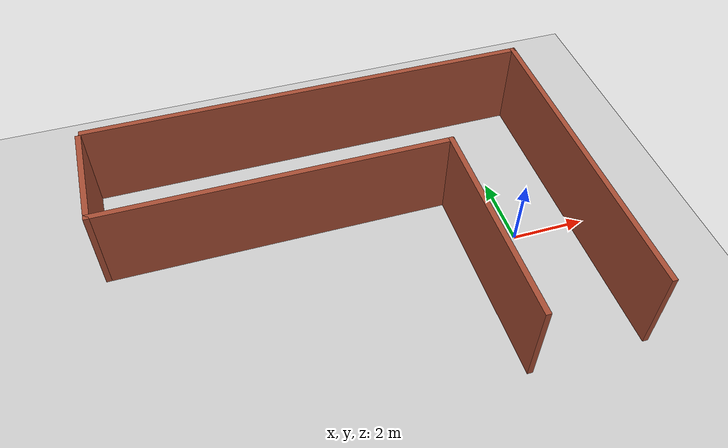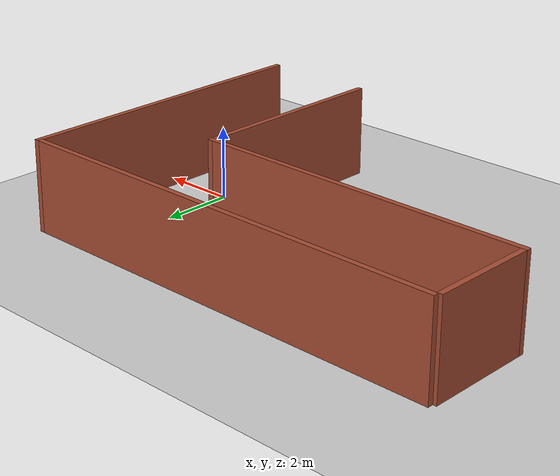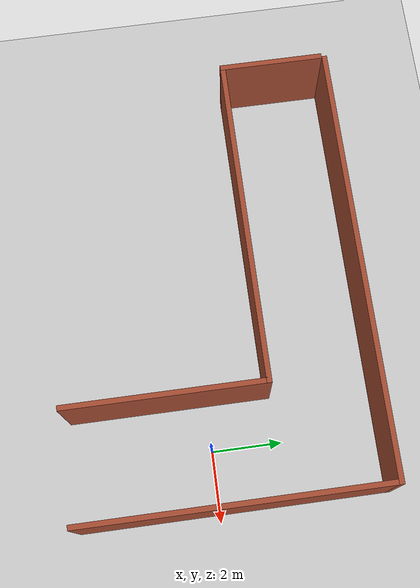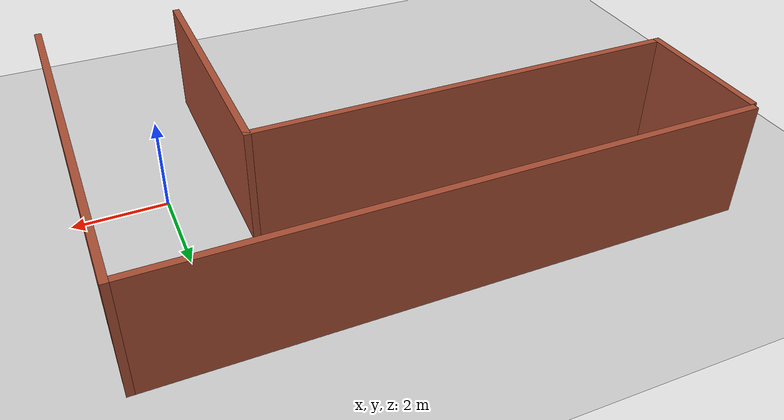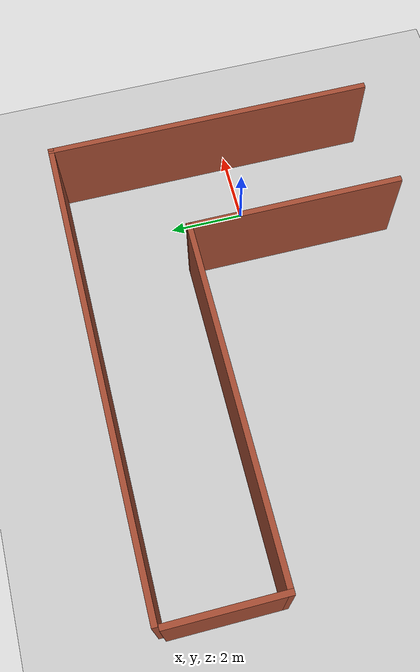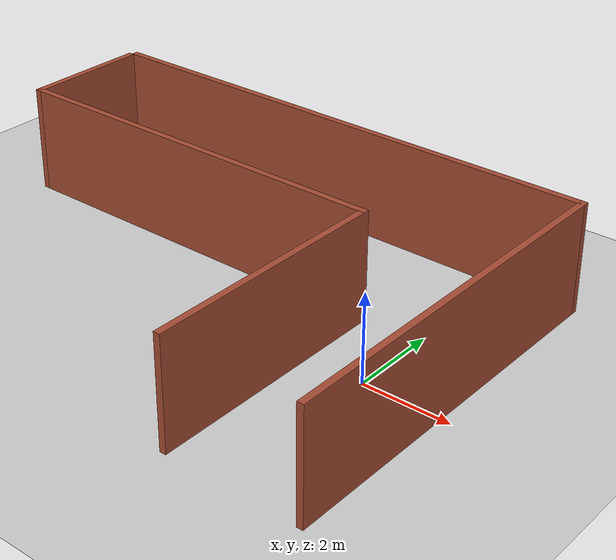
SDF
<sdf version="1.7">
 <world name="default">
  <light name="sun" type="directional">
   <pose>0 0 10 0 -0 0</pose>
   <diffuse>0.8 0.8 0.8 1</diffuse>
   <specular>0.2 0.2 0.2 1</specular>
   <attenuation>
    <range>1000</range>
    <constant>0.9</constant>
    <linear>0.01</linear>
    <quadratic>0.001</quadratic>
   </attenuation>
   <direction>-0.5 0.1 -0.9</direction>
   <spot><inner_angle>0</inner_angle><outer_angle>0</outer_angle><falloff>0</falloff></spot>
  </light>
  <model name="ground_plane">
   <static>1</static>
   <link name="link">
    <collision name="collision">
     <geometry><plane><normal>0 0 1</normal><size>100 100</size></plane></geometry>
     <surface><friction><ode><mu>100</mu><mu2>50</mu2></ode></friction></surface>
    </collision>
    <visual name="visual">
     <cast_shadows>0</cast_shadows>
     <geometry><plane><normal>0 0 1</normal><size>100 100</size></plane></geometry>
     <material>
      <script><uri>file://media/materials/scripts/gazebo.material</uri><name>Gazebo/Grey</name></script>
     </material>
    </visual>
   </link>
  </model>
  <gravity>0 0 -9.8</gravity>
  <magnetic_field>6e-06 2.3e-05 -4.2e-05</magnetic_field>
  <atmosphere type="adiabatic"/>
  <physics type="ode">
   <max_step_size>0.001</max_step_size>
   <real_time_factor>1</real_time_factor>
   <real_time_update_rate>1000</real_time_update_rate>
  </physics>
  <scene><ambient>0.4 0.4 0.4 1</ambient><background>0.7 0.7 0.7 1</background><shadows>1</shadows></scene>
  <audio><device>default</device></audio>
  <spherical_coordinates>
   <surface_model>EARTH_WGS84</surface_model>
   <latitude_deg>0</latitude_deg>
   <longitude_deg>0</longitude_deg>
   <elevation>0</elevation>
   <heading_deg>0</heading_deg>
  </spherical_coordinates>
  <model name="brick_wall">
   <pose>-4.5184 0.454903 0 0 -0 0</pose>
   <link name="Wall_11">
    <collision name="Wall_11_Collision">
     <geometry><box><size>9.5 0.15 2.5</size></box></geometry>
     <pose>0 0 1.25 0 -0 0</pose>
    </collision>
    <visual name="Wall_11_Visual">
     <pose>0 0 1.25 0 -0 0</pose>
     <geometry><box><size>9.5 0.15 2.5</size></box></geometry>
     <material>
      <script><uri>file://media/materials/scripts/gazebo.material</uri><name>Gazebo/Bricks</name></script>
      <ambient>1 1 1 1</ambient>
     </material>
     <meta><layer>0</layer></meta>
    </visual>
    <pose>-1.54787 1.29671 0 0 -0 3.14159</pose>
   </link>
   <link name="Wall_12">
    <collision name="Wall_12_Collision">
     <geometry><box><size>3 0.15 2.5</size></box></geometry>
     <pose>0 0 1.25 0 -0 0</pose>
    </collision>
    <visual name="Wall_12_Visual">
     <pose>0 0 1.25 0 -0 0</pose>
     <geometry><box><size>3 0.15 2.5</size></box></geometry>
     <material>
      <script><uri>file://media/materials/scripts/gazebo.material</uri><name>Gazebo/Bricks</name></script>
      <ambient>1 1 1 1</ambient>
     </material>
     <meta><layer>0</layer></meta>
    </visual>
    <pose>-6.22287 2.72171 0 0 -0 1.5708</pose>
   </link>
   <link name="Wall_14">
    <collision name="Wall_14_Collision">
     <geometry><box><size>8.75 0.15 2.5</size></box></geometry>
     <pose>0 0 1.25 0 -0 0</pose>
    </collision>
    <visual name="Wall_14_Visual">
     <pose>0 0 1.25 0 -0 0</pose>
     <geometry><box><size>8.75 0.15 2.5</size></box></geometry>
     <material>
      <script><uri>file://media/materials/scripts/gazebo.material</uri><name>Gazebo/Bricks</name></script>
      <ambient>1 1 1 1</ambient>
     </material>
     <meta><layer>0</layer></meta>
    </visual>
    <pose>6.22286 0.003288 0 0 -0 1.5708</pose>
   </link>
   <link name="Wall_16">
    <collision name="Wall_16_Collision">
     <geometry><box><size>12.5 0.15 2.5</size></box></geometry>
     <pose>0 0 1.25 0 -0 0</pose>
    </collision>
    <visual name="Wall_16_Visual">
     <pose>0 0 1.25 0 -0 0</pose>
     <geometry><box><size>12.5 0.15 2.5</size></box></geometry>
     <material>
      <script><uri>file://media/materials/scripts/gazebo.material</uri><name>Gazebo/Bricks</name></script>
      <ambient>1 1 1 1</ambient>
     </material>
     <meta><layer>0</layer></meta>
    </visual>
    <pose>0.047865 4.30329 0 0 -0 3.14159</pose>
   </link>
   <link name="Wall_9">
    <collision name="Wall_9_Collision">
     <geometry><box><size>5.75 0.15 2.5</size></box></geometry>
     <pose>0 0 1.25 0 -0 0</pose>
    </collision>
    <visual name="Wall_9_Visual">
     <pose>0 0 1.25 0 -0 0</pose>
     <geometry><box><size>5.75 0.15 2.5</size></box></geometry>
     <material>
      <script><uri>file://media/materials/scripts/gazebo.material</uri><name>Gazebo/Bricks</name></script>
      <ambient>1 1 1 1</ambient>
     </material>
     <meta><layer>0</layer></meta>
    </visual>
    <pose>3.12713 -1.50329 0 0 -0 -1.5708</pose>
   </link>
   <static>1</static>
  </model>
 </world>
</sdf>
